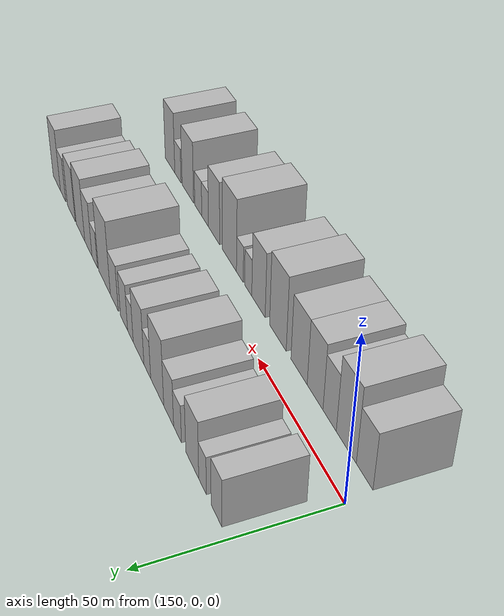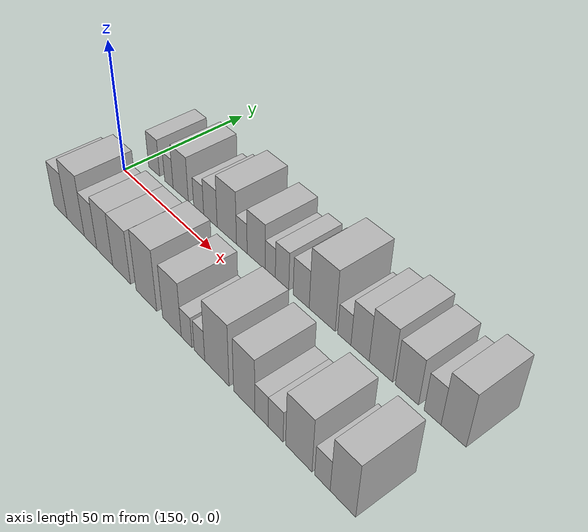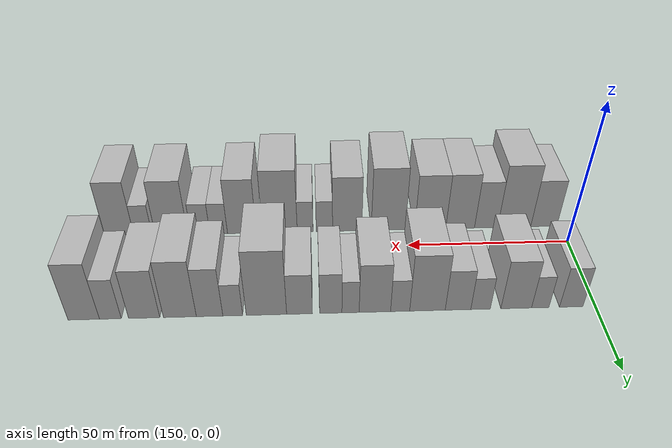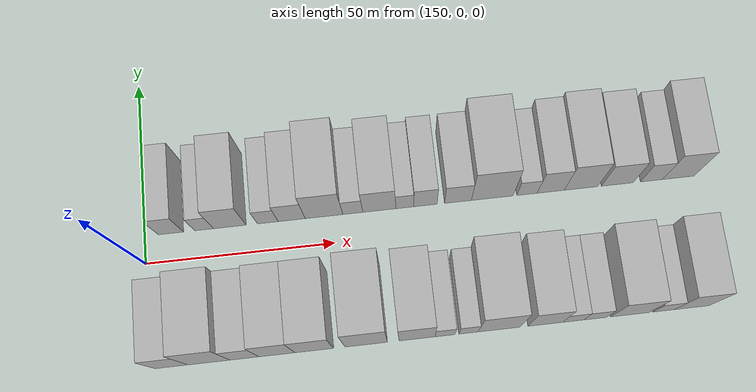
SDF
<sdf version="1.6">
 <world name="default">
  <model name="building_17">
   <static>1</static>
   <pose>156.9179 17.5000 0 0.000000 0.000000 1.570796</pose>
   <link name="link">
    <pose>0 0 7.50 0 0 0</pose>
    <collision name="collision"><geometry><box><size>20.0000 6.6842 15.0000</size></box></geometry></collision>
    <visual name="visual">
     <cast_shadows>0</cast_shadows>
     <geometry><box><size>20.0000 6.6842 15.0000</size></box></geometry>
     <material>
      <script>
       <uri>model://HANNAS_wall/materials/scripts</uri>
       <uri>model://HANNAS_wall/materials/textures</uri>
       <name>vrc/HANNAS_wall</name>
      </script>
     </material>
    </visual>
   </link>
  </model>
  <model name="building_18">
   <static>1</static>
   <pose>165.7371 17.5000 0 0.000000 0.000000 1.570796</pose>
   <link name="link">
    <pose>0 0 6.00 0 0 0</pose>
    <collision name="collision"><geometry><box><size>20.0000 4.9541 12.0000</size></box></geometry></collision>
    <visual name="visual">
     <cast_shadows>0</cast_shadows>
     <geometry><box><size>20.0000 4.9541 12.0000</size></box></geometry>
     <material>
      <script>
       <uri>model://HANNAS_wall/materials/scripts</uri>
       <uri>model://HANNAS_wall/materials/textures</uri>
       <name>vrc/HANNAS_wall</name>
      </script>
     </material>
    </visual>
   </link>
  </model>
  <model name="building_19">
   <static>1</static>
   <pose>172.5716 17.5000 0 0.000000 0.000000 1.570796</pose>
   <link name="link">
    <pose>0 0 9.00 0 0 0</pose>
    <collision name="collision"><geometry><box><size>20.0000 8.7150 18.0000</size></box></geometry></collision>
    <visual name="visual">
     <cast_shadows>0</cast_shadows>
     <geometry><box><size>20.0000 8.7150 18.0000</size></box></geometry>
     <material>
      <script>
       <uri>model://HANNAS_wall/materials/scripts</uri>
       <uri>model://HANNAS_wall/materials/textures</uri>
       <name>vrc/HANNAS_wall</name>
      </script>
     </material>
    </visual>
   </link>
  </model>
  <model name="building_20">
   <static>1</static>
   <pose>182.6954 17.5000 0 0.000000 0.000000 1.570796</pose>
   <link name="link">
    <pose>0 0 6.00 0 0 0</pose>
    <collision name="collision"><geometry><box><size>20.0000 5.5326 12.0000</size></box></geometry></collision>
    <visual name="visual">
     <cast_shadows>0</cast_shadows>
     <geometry><box><size>20.0000 5.5326 12.0000</size></box></geometry>
     <material>
      <script>
       <uri>model://HANNAS_wall/materials/scripts</uri>
       <uri>model://HANNAS_wall/materials/textures</uri>
       <name>vrc/HANNAS_wall</name>
      </script>
     </material>
    </visual>
   </link>
  </model>
  <model name="building_21">
   <static>1</static>
   <pose>189.0813 17.5000 0 0.000000 0.000000 1.570796</pose>
   <link name="link">
    <pose>0 0 7.50 0 0 0</pose>
    <collision name="collision"><geometry><box><size>20.0000 7.2392 15.0000</size></box></geometry></collision>
    <visual name="visual">
     <cast_shadows>0</cast_shadows>
     <geometry><box><size>20.0000 7.2392 15.0000</size></box></geometry>
     <material>
      <script>
       <uri>model://HANNAS_wall/materials/scripts</uri>
       <uri>model://HANNAS_wall/materials/textures</uri>
       <name>vrc/HANNAS_wall</name>
      </script>
     </material>
    </visual>
   </link>
  </model>
  <model name="building_22">
   <static>1</static>
   <pose>197.7190 17.5000 0 0.000000 0.000000 1.570796</pose>
   <link name="link">
    <pose>0 0 10.50 0 0 0</pose>
    <collision name="collision"><geometry><box><size>20.0000 10.0362 21.0000</size></box></geometry></collision>
    <visual name="visual">
     <cast_shadows>0</cast_shadows>
     <geometry><box><size>20.0000 10.0362 21.0000</size></box></geometry>
     <material>
      <script>
       <uri>model://HANNAS_wall/materials/scripts</uri>
       <uri>model://HANNAS_wall/materials/textures</uri>
       <name>vrc/HANNAS_wall</name>
      </script>
     </material>
    </visual>
   </link>
  </model>
  <model name="building_23">
   <static>1</static>
   <pose>205.4231 17.5000 0 0.000000 0.000000 1.570796</pose>
   <link name="link">
    <pose>0 0 6.00 0 0 0</pose>
    <collision name="collision"><geometry><box><size>20.0000 5.3720 12.0000</size></box></geometry></collision>
    <visual name="visual">
     <cast_shadows>0</cast_shadows>
     <geometry><box><size>20.0000 5.3720 12.0000</size></box></geometry>
     <material>
      <script>
       <uri>model://HANNAS_wall/materials/scripts</uri>
       <uri>model://HANNAS_wall/materials/textures</uri>
       <name>vrc/HANNAS_wall</name>
      </script>
     </material>
    </visual>
   </link>
  </model>
  <model name="building_24">
   <static>1</static>
   <pose>212.5330 17.5000 0 0.000000 0.000000 1.570796</pose>
   <link name="link">
    <pose>0 0 9.00 0 0 0</pose>
    <collision name="collision"><geometry><box><size>20.0000 8.8478 18.0000</size></box></geometry></collision>
    <visual name="visual">
     <cast_shadows>0</cast_shadows>
     <geometry><box><size>20.0000 8.8478 18.0000</size></box></geometry>
     <material>
      <script>
       <uri>model://HANNAS_wall/materials/scripts</uri>
       <uri>model://HANNAS_wall/materials/textures</uri>
       <name>vrc/HANNAS_wall</name>
      </script>
     </material>
    </visual>
   </link>
  </model>
  <model name="building_25">
   <static>1</static>
   <pose>219.3703 17.5000 0 0.000000 0.000000 1.570796</pose>
   <link name="link">
    <pose>0 0 6.00 0 0 0</pose>
    <collision name="collision"><geometry><box><size>20.0000 4.8268 12.0000</size></box></geometry></collision>
    <visual name="visual">
     <cast_shadows>0</cast_shadows>
     <geometry><box><size>20.0000 4.8268 12.0000</size></box></geometry>
     <material>
      <script>
       <uri>model://HANNAS_wall/materials/scripts</uri>
       <uri>model://HANNAS_wall/materials/textures</uri>
       <name>vrc/HANNAS_wall</name>
      </script>
     </material>
    </visual>
   </link>
  </model>
  <model name="building_26">
   <static>1</static>
   <pose>224.9114 17.5000 0 0.000000 0.000000 1.570796</pose>
   <link name="link">
    <pose>0 0 7.50 0 0 0</pose>
    <collision name="collision"><geometry><box><size>20.0000 6.2554 15.0000</size></box></geometry></collision>
    <visual name="visual">
     <cast_shadows>0</cast_shadows>
     <geometry><box><size>20.0000 6.2554 15.0000</size></box></geometry>
     <material>
      <script>
       <uri>model://HANNAS_wall/materials/scripts</uri>
       <uri>model://HANNAS_wall/materials/textures</uri>
       <name>vrc/HANNAS_wall</name>
      </script>
     </material>
    </visual>
   </link>
  </model>
  <model name="building_27">
   <static>1</static>
   <pose>233.6453 17.5000 0 0.000000 0.000000 1.570796</pose>
   <link name="link">
    <pose>0 0 7.50 0 0 0</pose>
    <collision name="collision"><geometry><box><size>20.0000 7.2123 15.0000</size></box></geometry></collision>
    <visual name="visual">
     <cast_shadows>0</cast_shadows>
     <geometry><box><size>20.0000 7.2123 15.0000</size></box></geometry>
     <material>
      <script>
       <uri>model://HANNAS_wall/materials/scripts</uri>
       <uri>model://HANNAS_wall/materials/textures</uri>
       <name>vrc/HANNAS_wall</name>
      </script>
     </material>
    </visual>
   </link>
  </model>
  <model name="building_28">
   <static>1</static>
   <pose>242.8889 17.5000 0 0.000000 0.000000 1.570796</pose>
   <link name="link">
    <pose>0 0 12.00 0 0 0</pose>
    <collision name="collision"><geometry><box><size>20.0000 11.2750 24.0000</size></box></geometry></collision>
    <visual name="visual">
     <cast_shadows>0</cast_shadows>
     <geometry><box><size>20.0000 11.2750 24.0000</size></box></geometry>
     <material>
      <script>
       <uri>model://HANNAS_wall/materials/scripts</uri>
       <uri>model://HANNAS_wall/materials/textures</uri>
       <name>vrc/HANNAS_wall</name>
      </script>
     </material>
    </visual>
   </link>
  </model>
  <model name="building_29">
   <static>1</static>
   <pose>252.2764 17.5000 0 0.000000 0.000000 1.570796</pose>
   <link name="link">
    <pose>0 0 6.00 0 0 0</pose>
    <collision name="collision"><geometry><box><size>20.0000 5.4998 12.0000</size></box></geometry></collision>
    <visual name="visual">
     <cast_shadows>0</cast_shadows>
     <geometry><box><size>20.0000 5.4998 12.0000</size></box></geometry>
     <material>
      <script>
       <uri>model://HANNAS_wall/materials/scripts</uri>
       <uri>model://HANNAS_wall/materials/textures</uri>
       <name>vrc/HANNAS_wall</name>
      </script>
     </material>
    </visual>
   </link>
  </model>
  <model name="building_30">
   <static>1</static>
   <pose>258.6994 17.5000 0 0.000000 0.000000 1.570796</pose>
   <link name="link">
    <pose>0 0 9.00 0 0 0</pose>
    <collision name="collision"><geometry><box><size>20.0000 7.3462 18.0000</size></box></geometry></collision>
    <visual name="visual">
     <cast_shadows>0</cast_shadows>
     <geometry><box><size>20.0000 7.3462 18.0000</size></box></geometry>
     <material>
      <script>
       <uri>model://HANNAS_wall/materials/scripts</uri>
       <uri>model://HANNAS_wall/materials/textures</uri>
       <name>vrc/HANNAS_wall</name>
      </script>
     </material>
    </visual>
   </link>
  </model>
  <model name="building_31">
   <static>1</static>
   <pose>266.9366 17.5000 0 0.000000 0.000000 1.570796</pose>
   <link name="link">
    <pose>0 0 10.50 0 0 0</pose>
    <collision name="collision"><geometry><box><size>20.0000 9.1282 21.0000</size></box></geometry></collision>
    <visual name="visual">
     <cast_shadows>0</cast_shadows>
     <geometry><box><size>20.0000 9.1282 21.0000</size></box></geometry>
     <material>
      <script>
       <uri>model://HANNAS_wall/materials/scripts</uri>
       <uri>model://HANNAS_wall/materials/textures</uri>
       <name>vrc/HANNAS_wall</name>
      </script>
     </material>
    </visual>
   </link>
  </model>
  <model name="building_32">
   <static>1</static>
   <pose>276.8207 17.5000 0 0.000000 0.000000 1.570796</pose>
   <link name="link">
    <pose>0 0 9.00 0 0 0</pose>
    <collision name="collision"><geometry><box><size>20.0000 8.6400 18.0000</size></box></geometry></collision>
    <visual name="visual">
     <cast_shadows>0</cast_shadows>
     <geometry><box><size>20.0000 8.6400 18.0000</size></box></geometry>
     <material>
      <script>
       <uri>model://HANNAS_wall/materials/scripts</uri>
       <uri>model://HANNAS_wall/materials/textures</uri>
       <name>vrc/HANNAS_wall</name>
      </script>
     </material>
    </visual>
   </link>
  </model>
  <model name="building_33">
   <static>1</static>
   <pose>286.1536 17.5000 0 0.000000 0.000000 1.570796</pose>
   <link name="link">
    <pose>0 0 7.50 0 0 0</pose>
    <collision name="collision"><geometry><box><size>20.0000 6.0259 15.0000</size></box></geometry></collision>
    <visual name="visual">
     <cast_shadows>0</cast_shadows>
     <geometry><box><size>20.0000 6.0259 15.0000</size></box></geometry>
     <material>
      <script>
       <uri>model://HANNAS_wall/materials/scripts</uri>
       <uri>model://HANNAS_wall/materials/textures</uri>
       <name>vrc/HANNAS_wall</name>
      </script>
     </material>
    </visual>
   </link>
  </model>
  <model name="building_34">
   <static>1</static>
   <pose>293.4868 17.5000 0 0.000000 0.000000 1.570796</pose>
   <link name="link">
    <pose>0 0 10.50 0 0 0</pose>
    <collision name="collision"><geometry><box><size>20.0000 8.6404 21.0000</size></box></geometry></collision>
    <visual name="visual">
     <cast_shadows>0</cast_shadows>
     <geometry><box><size>20.0000 8.6404 21.0000</size></box></geometry>
     <material>
      <script>
       <uri>model://HANNAS_wall/materials/scripts</uri>
       <uri>model://HANNAS_wall/materials/textures</uri>
       <name>vrc/HANNAS_wall</name>
      </script>
     </material>
    </visual>
   </link>
  </model>
  <model name="building_50">
   <static>1</static>
   <pose>155.5184 -17.5000 0 0.000000 0.000000 1.570796</pose>
   <link name="link">
    <pose>0 0 9.00 0 0 0</pose>
    <collision name="collision"><geometry><box><size>20.0000 8.4391 18.0000</size></box></geometry></collision>
    <visual name="visual">
     <cast_shadows>0</cast_shadows>
     <geometry><box><size>20.0000 8.4391 18.0000</size></box></geometry>
     <material>
      <script>
       <uri>model://HANNAS_wall/materials/scripts</uri>
       <uri>model://HANNAS_wall/materials/textures</uri>
       <name>vrc/HANNAS_wall</name>
      </script>
     </material>
    </visual>
   </link>
  </model>
  <model name="building_51">
   <static>1</static>
   <pose>165.0875 -17.5000 0 0.000000 0.000000 1.570796</pose>
   <link name="link">
    <pose>0 0 12.00 0 0 0</pose>
    <collision name="collision"><geometry><box><size>20.0000 10.6992 24.0000</size></box></geometry></collision>
    <visual name="visual">
     <cast_shadows>0</cast_shadows>
     <geometry><box><size>20.0000 10.6992 24.0000</size></box></geometry>
     <material>
      <script>
       <uri>model://HANNAS_wall/materials/scripts</uri>
       <uri>model://HANNAS_wall/materials/textures</uri>
       <name>vrc/HANNAS_wall</name>
      </script>
     </material>
    </visual>
   </link>
  </model>
  <model name="building_52">
   <static>1</static>
   <pose>174.1637 -17.5000 0 0.000000 0.000000 1.570796</pose>
   <link name="link">
    <pose>0 0 9.00 0 0 0</pose>
    <collision name="collision"><geometry><box><size>20.0000 7.4531 18.0000</size></box></geometry></collision>
    <visual name="visual">
     <cast_shadows>0</cast_shadows>
     <geometry><box><size>20.0000 7.4531 18.0000</size></box></geometry>
     <material>
      <script>
       <uri>model://HANNAS_wall/materials/scripts</uri>
       <uri>model://HANNAS_wall/materials/textures</uri>
       <name>vrc/HANNAS_wall</name>
      </script>
     </material>
    </visual>
   </link>
  </model>
  <model name="building_53">
   <static>1</static>
   <pose>182.5076 -17.5000 0 0.000000 0.000000 1.570796</pose>
   <link name="link">
    <pose>0 0 10.50 0 0 0</pose>
    <collision name="collision"><geometry><box><size>20.0000 9.2346 21.0000</size></box></geometry></collision>
    <visual name="visual">
     <cast_shadows>0</cast_shadows>
     <geometry><box><size>20.0000 9.2346 21.0000</size></box></geometry>
     <material>
      <script>
       <uri>model://HANNAS_wall/materials/scripts</uri>
       <uri>model://HANNAS_wall/materials/textures</uri>
       <name>vrc/HANNAS_wall</name>
      </script>
     </material>
    </visual>
   </link>
  </model>
  <model name="building_54">
   <static>1</static>
   <pose>192.1014 -17.5000 0 0.000000 0.000000 1.570796</pose>
   <link name="link">
    <pose>0 0 10.50 0 0 0</pose>
    <collision name="collision"><geometry><box><size>20.0000 9.9530 21.0000</size></box></geometry></collision>
    <visual name="visual">
     <cast_shadows>0</cast_shadows>
     <geometry><box><size>20.0000 9.9530 21.0000</size></box></geometry>
     <material>
      <script>
       <uri>model://HANNAS_wall/materials/scripts</uri>
       <uri>model://HANNAS_wall/materials/textures</uri>
       <name>vrc/HANNAS_wall</name>
      </script>
     </material>
    </visual>
   </link>
  </model>
  <model name="building_55">
   <static>1</static>
   <pose>205.5289 -17.5000 0 0.000000 0.000000 1.570796</pose>
   <link name="link">
    <pose>0 0 12.00 0 0 0</pose>
    <collision name="collision"><geometry><box><size>20.0000 10.9021 24.0000</size></box></geometry></collision>
    <visual name="visual">
     <cast_shadows>0</cast_shadows>
     <geometry><box><size>20.0000 10.9021 24.0000</size></box></geometry>
     <material>
      <script>
       <uri>model://HANNAS_wall/materials/scripts</uri>
       <uri>model://HANNAS_wall/materials/textures</uri>
       <name>vrc/HANNAS_wall</name>
      </script>
     </material>
    </visual>
   </link>
  </model>
  <model name="building_56">
   <static>1</static>
   <pose>218.6363 -17.5000 0 0.000000 0.000000 1.570796</pose>
   <link name="link">
    <pose>0 0 10.50 0 0 0</pose>
    <collision name="collision"><geometry><box><size>20.0000 9.3126 21.0000</size></box></geometry></collision>
    <visual name="visual">
     <cast_shadows>0</cast_shadows>
     <geometry><box><size>20.0000 9.3126 21.0000</size></box></geometry>
     <material>
      <script>
       <uri>model://HANNAS_wall/materials/scripts</uri>
       <uri>model://HANNAS_wall/materials/textures</uri>
       <name>vrc/HANNAS_wall</name>
      </script>
     </material>
    </visual>
   </link>
  </model>
  <model name="building_57">
   <static>1</static>
   <pose>225.8810 -17.5000 0 0.000000 0.000000 1.570796</pose>
   <link name="link">
    <pose>0 0 6.00 0 0 0</pose>
    <collision name="collision"><geometry><box><size>20.0000 5.1769 12.0000</size></box></geometry></collision>
    <visual name="visual">
     <cast_shadows>0</cast_shadows>
     <geometry><box><size>20.0000 5.1769 12.0000</size></box></geometry>
     <material>
      <script>
       <uri>model://HANNAS_wall/materials/scripts</uri>
       <uri>model://HANNAS_wall/materials/textures</uri>
       <name>vrc/HANNAS_wall</name>
      </script>
     </material>
    </visual>
   </link>
  </model>
  <model name="building_58">
   <static>1</static>
   <pose>231.9726 -17.5000 0 0.000000 0.000000 1.570796</pose>
   <link name="link">
    <pose>0 0 6.00 0 0 0</pose>
    <collision name="collision"><geometry><box><size>20.0000 5.0064 12.0000</size></box></geometry></collision>
    <visual name="visual">
     <cast_shadows>0</cast_shadows>
     <geometry><box><size>20.0000 5.0064 12.0000</size></box></geometry>
     <material>
      <script>
       <uri>model://HANNAS_wall/materials/scripts</uri>
       <uri>model://HANNAS_wall/materials/textures</uri>
       <name>vrc/HANNAS_wall</name>
      </script>
     </material>
    </visual>
   </link>
  </model>
  <model name="building_59">
   <static>1</static>
   <pose>239.9787 -17.5000 0 0.000000 0.000000 1.570796</pose>
   <link name="link">
    <pose>0 0 12.00 0 0 0</pose>
    <collision name="collision"><geometry><box><size>20.0000 11.0057 24.0000</size></box></geometry></collision>
    <visual name="visual">
     <cast_shadows>0</cast_shadows>
     <geometry><box><size>20.0000 11.0057 24.0000</size></box></geometry>
     <material>
      <script>
       <uri>model://HANNAS_wall/materials/scripts</uri>
       <uri>model://HANNAS_wall/materials/textures</uri>
       <name>vrc/HANNAS_wall</name>
      </script>
     </material>
    </visual>
   </link>
  </model>
  <model name="building_60">
   <static>1</static>
   <pose>252.0187 -17.5000 0 0.000000 0.000000 1.570796</pose>
   <link name="link">
    <pose>0 0 10.50 0 0 0</pose>
    <collision name="collision"><geometry><box><size>20.0000 9.0743 21.0000</size></box></geometry></collision>
    <visual name="visual">
     <cast_shadows>0</cast_shadows>
     <geometry><box><size>20.0000 9.0743 21.0000</size></box></geometry>
     <material>
      <script>
       <uri>model://HANNAS_wall/materials/scripts</uri>
       <uri>model://HANNAS_wall/materials/textures</uri>
       <name>vrc/HANNAS_wall</name>
      </script>
     </material>
    </visual>
   </link>
  </model>
  <model name="building_61">
   <static>1</static>
   <pose>259.3193 -17.5000 0 0.000000 0.000000 1.570796</pose>
   <link name="link">
    <pose>0 0 6.00 0 0 0</pose>
    <collision name="collision"><geometry><box><size>20.0000 5.5267 12.0000</size></box></geometry></collision>
    <visual name="visual">
     <cast_shadows>0</cast_shadows>
     <geometry><box><size>20.0000 5.5267 12.0000</size></box></geometry>
     <material>
      <script>
       <uri>model://HANNAS_wall/materials/scripts</uri>
       <uri>model://HANNAS_wall/materials/textures</uri>
       <name>vrc/HANNAS_wall</name>
      </script>
     </material>
    </visual>
   </link>
  </model>
  <model name="building_62">
   <static>1</static>
   <pose>265.0823 -17.5000 0 0.000000 0.000000 1.570796</pose>
   <link name="link">
    <pose>0 0 6.00 0 0 0</pose>
    <collision name="collision"><geometry><box><size>20.0000 5.9994 12.0000</size></box></geometry></collision>
    <visual name="visual">
     <cast_shadows>0</cast_shadows>
     <geometry><box><size>20.0000 5.9994 12.0000</size></box></geometry>
     <material>
      <script>
       <uri>model://HANNAS_wall/materials/scripts</uri>
       <uri>model://HANNAS_wall/materials/textures</uri>
       <name>vrc/HANNAS_wall</name>
      </script>
     </material>
    </visual>
   </link>
  </model>
  <model name="building_63">
   <static>1</static>
   <pose>274.1723 -17.5000 0 0.000000 0.000000 1.570796</pose>
   <link name="link">
    <pose>0 0 10.50 0 0 0</pose>
    <collision name="collision"><geometry><box><size>20.0000 10.1805 21.0000</size></box></geometry></collision>
    <visual name="visual">
     <cast_shadows>0</cast_shadows>
     <geometry><box><size>20.0000 10.1805 21.0000</size></box></geometry>
     <material>
      <script>
       <uri>model://HANNAS_wall/materials/scripts</uri>
       <uri>model://HANNAS_wall/materials/textures</uri>
       <name>vrc/HANNAS_wall</name>
      </script>
     </material>
    </visual>
   </link>
  </model>
  <model name="building_64">
   <static>1</static>
   <pose>283.1160 -17.5000 0 0.000000 0.000000 1.570796</pose>
   <link name="link">
    <pose>0 0 6.00 0 0 0</pose>
    <collision name="collision"><geometry><box><size>20.0000 5.7070 12.0000</size></box></geometry></collision>
    <visual name="visual">
     <cast_shadows>0</cast_shadows>
     <geometry><box><size>20.0000 5.7070 12.0000</size></box></geometry>
     <material>
      <script>
       <uri>model://HANNAS_wall/materials/scripts</uri>
       <uri>model://HANNAS_wall/materials/textures</uri>
       <name>vrc/HANNAS_wall</name>
      </script>
     </material>
    </visual>
   </link>
  </model>
  <model name="building_65">
   <static>1</static>
   <pose>290.5051 -17.5000 0 0.000000 0.000000 1.570796</pose>
   <link name="link">
    <pose>0 0 10.50 0 0 0</pose>
    <collision name="collision"><geometry><box><size>20.0000 9.0712 21.0000</size></box></geometry></collision>
    <visual name="visual">
     <cast_shadows>0</cast_shadows>
     <geometry><box><size>20.0000 9.0712 21.0000</size></box></geometry>
     <material>
      <script>
       <uri>model://HANNAS_wall/materials/scripts</uri>
       <uri>model://HANNAS_wall/materials/textures</uri>
       <name>vrc/HANNAS_wall</name>
      </script>
     </material>
    </visual>
   </link>
  </model>
 </world>
</sdf>
